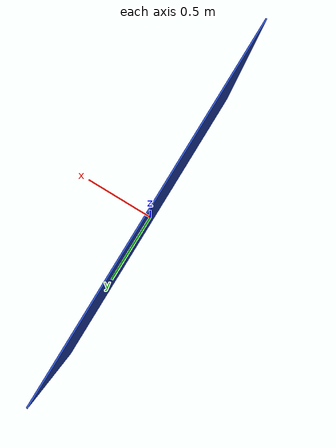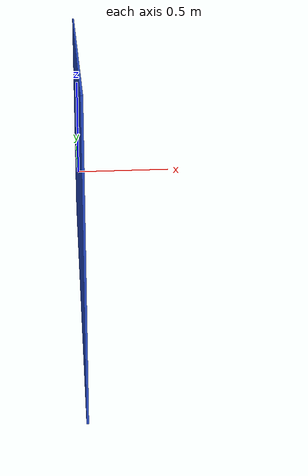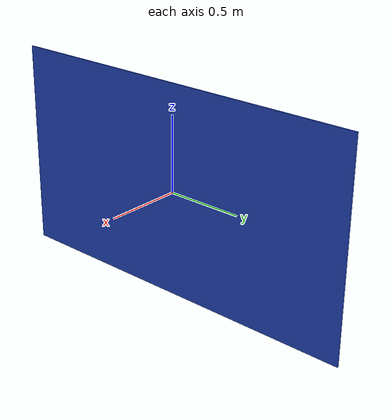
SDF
<?xml version="1.0" ?>
<sdf version="1.6">
  <model name="blue_box_img">
    <link name="link">
      <collision name="collision">
        <geometry>
          <box>
            <size>0.01 2.5 1.4</size>
          </box>
        </geometry>
      </collision>
      <visual name="visual">
        <geometry>
          <box>
            <size>0.01 2.5 1.4</size>
          </box>
        </geometry>
        <material>
          <script>
            <uri>model://blue_box_img/materials/scripts</uri>
            <uri>model://blue_box_img/materials/textures</uri>
            <name>vrc/blue_box_img</name>
          </script>
        </material>
      </visual>
    </link>

  </model>
</sdf>
